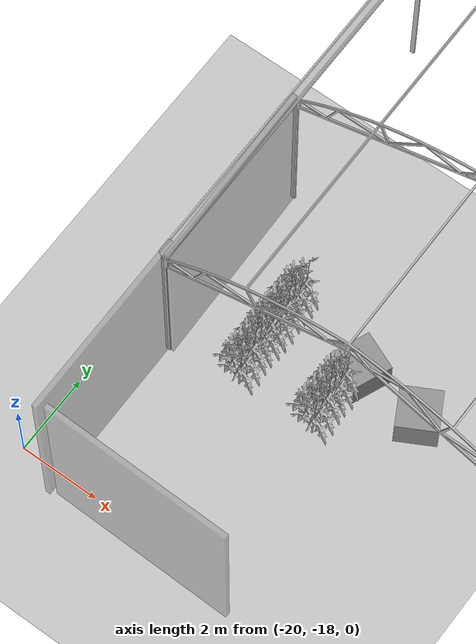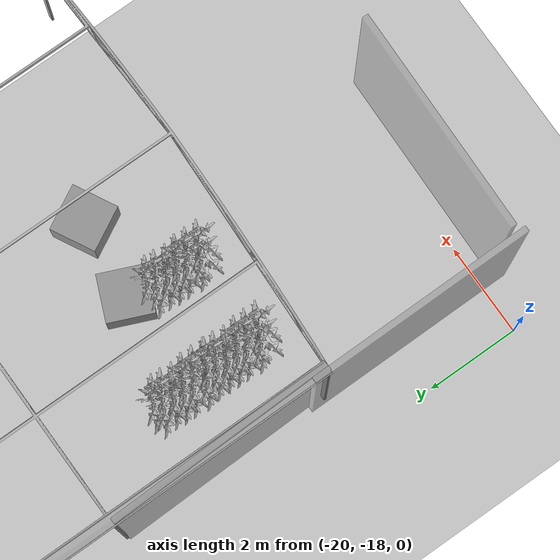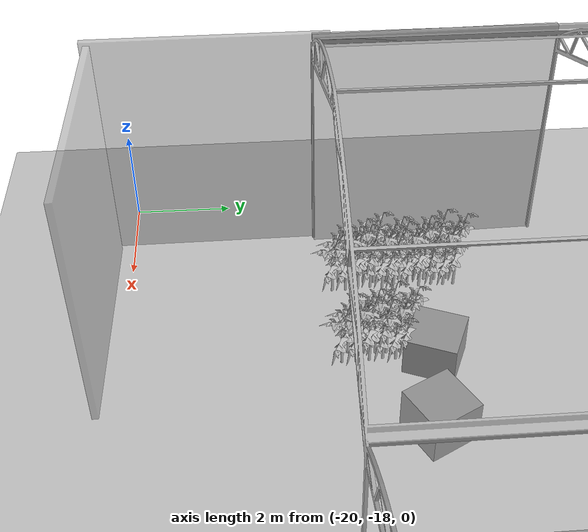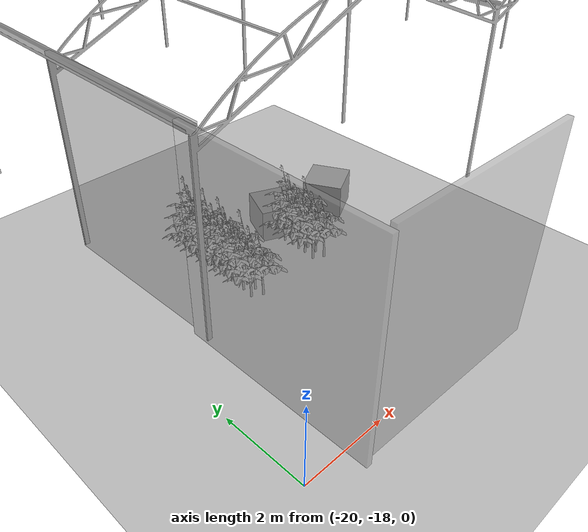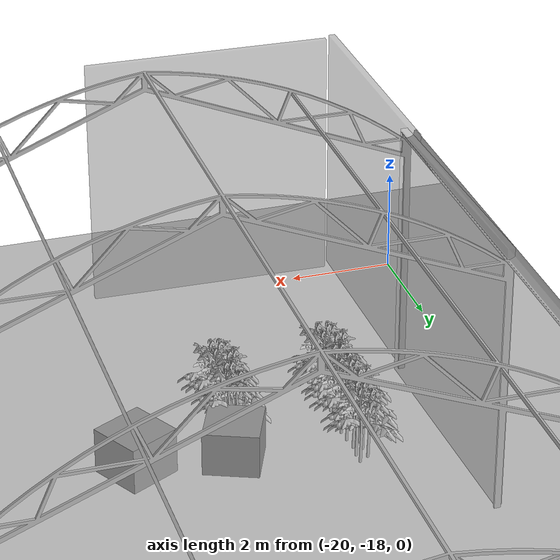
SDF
<sdf version="1.6">
 <world name="default">
  <model name="ground_plane">
   <static>1</static>
   <link name="link">
    <collision name="collision">
     <geometry><plane><normal>0 0 1</normal><size>100 100</size></plane></geometry>
     <surface>
      <contact><collide_bitmask>65535</collide_bitmask></contact>
      <friction><ode><mu>100</mu><mu2>50</mu2></ode></friction>
     </surface>
    </collision>
    <visual name="visual">
     <cast_shadows>0</cast_shadows>
     <geometry><plane><normal>0 0 1</normal><size>100 100</size></plane></geometry>
     <material>
      <script><uri>file://media/materials/scripts/gazebo.material</uri><name>Gazebo/Grey</name></script>
     </material>
    </visual>
   </link>
  </model>
  <model name="greenhouse">
   <static>1</static>
   <link name="link">
    <collision name="collision">
     <geometry>
      <mesh><scale>0.05 0.05 0.05</scale><uri>model://greenhouse/meshes/greenhouse.dae</uri></mesh>
     </geometry>
    </collision>
    <visual name="visual">
     <geometry>
      <mesh><scale>0.03 0.03 0.03</scale><uri>model://greenhouse/meshes/greenhouse.dae</uri></mesh>
     </geometry>
    </visual>
   </link>
   <pose>-24.6631 -23.579 0 0 -0 0</pose>
  </model>
  <model name="Front_Plant_1">
   <model name="tomato_plant_medium">
    <static>1</static>
    <link name="link">
     <collision name="collision">
      <pose>0 0 0 1.5708 -0 0</pose>
      <geometry><mesh><scale>0.5 0.5 0.5</scale><uri>model://stick/meshes/stick.dae</uri></mesh></geometry>
     </collision>
     <visual name="visual">
      <geometry>
       <mesh><scale>5e-06 5e-06 6e-06</scale><uri>model://tomato_plant_medium/meshes/tomato-plant.dae</uri></mesh>
      </geometry>
     </visual>
    </link>
    <pose>0.087453 -0.595994 0.012396 0 -0 0</pose>
   </model>
   <model name="tomato_plant_medium_0">
    <static>1</static>
    <link name="link">
     <collision name="collision">
      <pose>0 0 0 1.5708 -0 0</pose>
      <geometry><mesh><scale>0.5 0.5 0.5</scale><uri>model://stick/meshes/stick.dae</uri></mesh></geometry>
     </collision>
     <visual name="visual">
      <geometry>
       <mesh><scale>5e-06 5e-06 6e-06</scale><uri>model://tomato_plant_medium/meshes/tomato-plant.dae</uri></mesh>
      </geometry>
     </visual>
    </link>
    <pose>-0.086166 -0.251822 0.012396 0 -0 0</pose>
   </model>
   <model name="tomato_plant_medium_1">
    <static>1</static>
    <link name="link">
     <collision name="collision">
      <pose>0 0 0 1.5708 -0 0</pose>
      <geometry><mesh><scale>0.5 0.5 0.5</scale><uri>model://stick/meshes/stick.dae</uri></mesh></geometry>
     </collision>
     <visual name="visual">
      <geometry>
       <mesh><scale>5e-06 5e-06 6e-06</scale><uri>model://tomato_plant_medium/meshes/tomato-plant.dae</uri></mesh>
      </geometry>
     </visual>
    </link>
    <pose>0.080199 0.118127 0.012396 0 -0 0</pose>
   </model>
   <model name="tomato_plant_small">
    <static>1</static>
    <link name="link">
     <collision name="collision">
      <pose>0 0 0 1.5708 -0 0</pose>
      <geometry><mesh><scale>0.5 0.45 0.5</scale><uri>model://stick/meshes/stick.dae</uri></mesh></geometry>
     </collision>
     <visual name="visual">
      <geometry>
       <mesh><scale>5e-06 5e-06 5e-06</scale><uri>model://tomato_plant_small/meshes/tomato-plant.dae</uri></mesh>
      </geometry>
     </visual>
    </link>
    <pose>0.099683 -1.12011 0.012396 0 -0 0</pose>
   </model>
   <model name="tomato_plant_small_0">
    <static>1</static>
    <link name="link">
     <collision name="collision">
      <pose>0 0 0 1.5708 -0 0</pose>
      <geometry><mesh><scale>0.5 0.45 0.5</scale><uri>model://stick/meshes/stick.dae</uri></mesh></geometry>
     </collision>
     <visual name="visual">
      <geometry>
       <mesh><scale>5e-06 5e-06 5e-06</scale><uri>model://tomato_plant_small/meshes/tomato-plant.dae</uri></mesh>
      </geometry>
     </visual>
    </link>
    <pose>-0.138771 -0.983982 0.012396 0 -0 0</pose>
   </model>
   <model name="tomato_plant_small_1">
    <static>1</static>
    <link name="link">
     <collision name="collision">
      <pose>0 0 0 1.5708 -0 0</pose>
      <geometry><mesh><scale>0.5 0.45 0.5</scale><uri>model://stick/meshes/stick.dae</uri></mesh></geometry>
     </collision>
     <visual name="visual">
      <geometry>
       <mesh><scale>5e-06 5e-06 5e-06</scale><uri>model://tomato_plant_small/meshes/tomato-plant.dae</uri></mesh>
      </geometry>
     </visual>
    </link>
    <pose>0.101334 -0.848814 0.012396 0 -0 0</pose>
   </model>
   <model name="tomato_plant_small_2">
    <static>1</static>
    <link name="link">
     <collision name="collision">
      <pose>0 0 0 1.5708 -0 0</pose>
      <geometry><mesh><scale>0.5 0.45 0.5</scale><uri>model://stick/meshes/stick.dae</uri></mesh></geometry>
     </collision>
     <visual name="visual">
      <geometry>
       <mesh><scale>5e-06 5e-06 5e-06</scale><uri>model://tomato_plant_small/meshes/tomato-plant.dae</uri></mesh>
      </geometry>
     </visual>
    </link>
    <pose>-0.103369 -0.683189 0.012396 0 -0 0</pose>
   </model>
   <model name="tomato_plant_small_3">
    <static>1</static>
    <link name="link">
     <collision name="collision">
      <pose>0 0 0 1.5708 -0 0</pose>
      <geometry><mesh><scale>0.5 0.45 0.5</scale><uri>model://stick/meshes/stick.dae</uri></mesh></geometry>
     </collision>
     <visual name="visual">
      <geometry>
       <mesh><scale>5e-06 5e-06 5e-06</scale><uri>model://tomato_plant_small/meshes/tomato-plant.dae</uri></mesh>
      </geometry>
     </visual>
    </link>
    <pose>-0.104381 -0.464811 0.012396 0 -0 0</pose>
   </model>
   <model name="tomato_plant_small_4">
    <static>1</static>
    <link name="link">
     <collision name="collision">
      <pose>0 0 0 1.5708 -0 0</pose>
      <geometry><mesh><scale>0.5 0.45 0.5</scale><uri>model://stick/meshes/stick.dae</uri></mesh></geometry>
     </collision>
     <visual name="visual">
      <geometry>
       <mesh><scale>5e-06 5e-06 5e-06</scale><uri>model://tomato_plant_small/meshes/tomato-plant.dae</uri></mesh>
      </geometry>
     </visual>
    </link>
    <pose>0.055604 -0.336879 0.012396 0 -0 0</pose>
   </model>
   <model name="tomato_plant_small_5">
    <static>1</static>
    <link name="link">
     <collision name="collision">
      <pose>0 0 0 1.5708 -0 0</pose>
      <geometry><mesh><scale>0.5 0.45 0.5</scale><uri>model://stick/meshes/stick.dae</uri></mesh></geometry>
     </collision>
     <visual name="visual">
      <geometry>
       <mesh><scale>5e-06 5e-06 5e-06</scale><uri>model://tomato_plant_small/meshes/tomato-plant.dae</uri></mesh>
      </geometry>
     </visual>
    </link>
    <pose>0.085059 -0.092572 0.012396 0 -0 0</pose>
   </model>
   <model name="tomato_plant_small_6">
    <static>1</static>
    <link name="link">
     <collision name="collision">
      <pose>0 0 0 1.5708 -0 0</pose>
      <geometry><mesh><scale>0.5 0.45 0.5</scale><uri>model://stick/meshes/stick.dae</uri></mesh></geometry>
     </collision>
     <visual name="visual">
      <geometry>
       <mesh><scale>5e-06 5e-06 5e-06</scale><uri>model://tomato_plant_small/meshes/tomato-plant.dae</uri></mesh>
      </geometry>
     </visual>
    </link>
    <pose>-0.096345 0.008888 0.012396 0 -0 0</pose>
   </model>
   <static>0</static>
   <pose>-17.2096 -12.8039 0 0 -0 0</pose>
  </model>
  <model name="Front_Plant_1_1">
   <model name="tomato_plant_medium">
    <static>1</static>
    <link name="link">
     <collision name="collision">
      <pose>0 0 0 1.5708 -0 0</pose>
      <geometry><mesh><scale>0.5 0.5 0.5</scale><uri>model://stick/meshes/stick.dae</uri></mesh></geometry>
     </collision>
     <visual name="visual">
      <geometry>
       <mesh><scale>5e-06 5e-06 6e-06</scale><uri>model://tomato_plant_medium/meshes/tomato-plant.dae</uri></mesh>
      </geometry>
     </visual>
    </link>
    <pose>0.087453 -0.595994 0.012396 0 -0 0</pose>
   </model>
   <model name="tomato_plant_medium_0">
    <static>1</static>
    <link name="link">
     <collision name="collision">
      <pose>0 0 0 1.5708 -0 0</pose>
      <geometry><mesh><scale>0.5 0.5 0.5</scale><uri>model://stick/meshes/stick.dae</uri></mesh></geometry>
     </collision>
     <visual name="visual">
      <geometry>
       <mesh><scale>5e-06 5e-06 6e-06</scale><uri>model://tomato_plant_medium/meshes/tomato-plant.dae</uri></mesh>
      </geometry>
     </visual>
    </link>
    <pose>-0.086166 -0.251822 0.012396 0 -0 0</pose>
   </model>
   <model name="tomato_plant_medium_1">
    <static>1</static>
    <link name="link">
     <collision name="collision">
      <pose>0 0 0 1.5708 -0 0</pose>
      <geometry><mesh><scale>0.5 0.5 0.5</scale><uri>model://stick/meshes/stick.dae</uri></mesh></geometry>
     </collision>
     <visual name="visual">
      <geometry>
       <mesh><scale>5e-06 5e-06 6e-06</scale><uri>model://tomato_plant_medium/meshes/tomato-plant.dae</uri></mesh>
      </geometry>
     </visual>
    </link>
    <pose>0.080199 0.118127 0.012396 0 -0 0</pose>
   </model>
   <model name="tomato_plant_small">
    <static>1</static>
    <link name="link">
     <collision name="collision">
      <pose>0 0 0 1.5708 -0 0</pose>
      <geometry><mesh><scale>0.5 0.45 0.5</scale><uri>model://stick/meshes/stick.dae</uri></mesh></geometry>
     </collision>
     <visual name="visual">
      <geometry>
       <mesh><scale>5e-06 5e-06 5e-06</scale><uri>model://tomato_plant_small/meshes/tomato-plant.dae</uri></mesh>
      </geometry>
     </visual>
    </link>
    <pose>0.099683 -1.12011 0.012396 0 -0 0</pose>
   </model>
   <model name="tomato_plant_small_0">
    <static>1</static>
    <link name="link">
     <collision name="collision">
      <pose>0 0 0 1.5708 -0 0</pose>
      <geometry><mesh><scale>0.5 0.45 0.5</scale><uri>model://stick/meshes/stick.dae</uri></mesh></geometry>
     </collision>
     <visual name="visual">
      <geometry>
       <mesh><scale>5e-06 5e-06 5e-06</scale><uri>model://tomato_plant_small/meshes/tomato-plant.dae</uri></mesh>
      </geometry>
     </visual>
    </link>
    <pose>-0.138771 -0.983982 0.012396 0 -0 0</pose>
   </model>
   <model name="tomato_plant_small_1">
    <static>1</static>
    <link name="link">
     <collision name="collision">
      <pose>0 0 0 1.5708 -0 0</pose>
      <geometry><mesh><scale>0.5 0.45 0.5</scale><uri>model://stick/meshes/stick.dae</uri></mesh></geometry>
     </collision>
     <visual name="visual">
      <geometry>
       <mesh><scale>5e-06 5e-06 5e-06</scale><uri>model://tomato_plant_small/meshes/tomato-plant.dae</uri></mesh>
      </geometry>
     </visual>
    </link>
    <pose>0.101334 -0.848814 0.012396 0 -0 0</pose>
   </model>
   <model name="tomato_plant_small_2">
    <static>1</static>
    <link name="link">
     <collision name="collision">
      <pose>0 0 0 1.5708 -0 0</pose>
      <geometry><mesh><scale>0.5 0.45 0.5</scale><uri>model://stick/meshes/stick.dae</uri></mesh></geometry>
     </collision>
     <visual name="visual">
      <geometry>
       <mesh><scale>5e-06 5e-06 5e-06</scale><uri>model://tomato_plant_small/meshes/tomato-plant.dae</uri></mesh>
      </geometry>
     </visual>
    </link>
    <pose>-0.103369 -0.683189 0.012396 0 -0 0</pose>
   </model>
   <model name="tomato_plant_small_3">
    <static>1</static>
    <link name="link">
     <collision name="collision">
      <pose>0 0 0 1.5708 -0 0</pose>
      <geometry><mesh><scale>0.5 0.45 0.5</scale><uri>model://stick/meshes/stick.dae</uri></mesh></geometry>
     </collision>
     <visual name="visual">
      <geometry>
       <mesh><scale>5e-06 5e-06 5e-06</scale><uri>model://tomato_plant_small/meshes/tomato-plant.dae</uri></mesh>
      </geometry>
     </visual>
    </link>
    <pose>-0.104381 -0.464811 0.012396 0 -0 0</pose>
   </model>
   <model name="tomato_plant_small_4">
    <static>1</static>
    <link name="link">
     <collision name="collision">
      <pose>0 0 0 1.5708 -0 0</pose>
      <geometry><mesh><scale>0.5 0.45 0.5</scale><uri>model://stick/meshes/stick.dae</uri></mesh></geometry>
     </collision>
     <visual name="visual">
      <geometry>
       <mesh><scale>5e-06 5e-06 5e-06</scale><uri>model://tomato_plant_small/meshes/tomato-plant.dae</uri></mesh>
      </geometry>
     </visual>
    </link>
    <pose>0.055604 -0.336879 0.012396 0 -0 0</pose>
   </model>
   <model name="tomato_plant_small_5">
    <static>1</static>
    <link name="link">
     <collision name="collision">
      <pose>0 0 0 1.5708 -0 0</pose>
      <geometry><mesh><scale>0.5 0.45 0.5</scale><uri>model://stick/meshes/stick.dae</uri></mesh></geometry>
     </collision>
     <visual name="visual">
      <geometry>
       <mesh><scale>5e-06 5e-06 5e-06</scale><uri>model://tomato_plant_small/meshes/tomato-plant.dae</uri></mesh>
      </geometry>
     </visual>
    </link>
    <pose>0.085059 -0.092572 0.012396 0 -0 0</pose>
   </model>
   <model name="tomato_plant_small_6">
    <static>1</static>
    <link name="link">
     <collision name="collision">
      <pose>0 0 0 1.5708 -0 0</pose>
      <geometry><mesh><scale>0.5 0.45 0.5</scale><uri>model://stick/meshes/stick.dae</uri></mesh></geometry>
     </collision>
     <visual name="visual">
      <geometry>
       <mesh><scale>5e-06 5e-06 5e-06</scale><uri>model://tomato_plant_small/meshes/tomato-plant.dae</uri></mesh>
      </geometry>
     </visual>
    </link>
    <pose>-0.096345 0.008888 0.012396 0 -0 0</pose>
   </model>
   <static>0</static>
   <pose>-17.2096 -11.5451 0 0 -0 0</pose>
  </model>
  <model name="Front_Plant_1_12">
   <model name="tomato_plant_medium">
    <static>1</static>
    <link name="link">
     <collision name="collision">
      <pose>0 0 0 1.5708 -0 0</pose>
      <geometry><mesh><scale>0.5 0.5 0.5</scale><uri>model://stick/meshes/stick.dae</uri></mesh></geometry>
     </collision>
     <visual name="visual">
      <geometry>
       <mesh><scale>5e-06 5e-06 6e-06</scale><uri>model://tomato_plant_medium/meshes/tomato-plant.dae</uri></mesh>
      </geometry>
     </visual>
    </link>
    <pose>0.087453 -0.595994 0.012396 0 -0 0</pose>
   </model>
   <model name="tomato_plant_medium_0">
    <static>1</static>
    <link name="link">
     <collision name="collision">
      <pose>0 0 0 1.5708 -0 0</pose>
      <geometry><mesh><scale>0.5 0.5 0.5</scale><uri>model://stick/meshes/stick.dae</uri></mesh></geometry>
     </collision>
     <visual name="visual">
      <geometry>
       <mesh><scale>5e-06 5e-06 6e-06</scale><uri>model://tomato_plant_medium/meshes/tomato-plant.dae</uri></mesh>
      </geometry>
     </visual>
    </link>
    <pose>-0.086166 -0.251822 0.012396 0 -0 0</pose>
   </model>
   <model name="tomato_plant_medium_1">
    <static>1</static>
    <link name="link">
     <collision name="collision">
      <pose>0 0 0 1.5708 -0 0</pose>
      <geometry><mesh><scale>0.5 0.5 0.5</scale><uri>model://stick/meshes/stick.dae</uri></mesh></geometry>
     </collision>
     <visual name="visual">
      <geometry>
       <mesh><scale>5e-06 5e-06 6e-06</scale><uri>model://tomato_plant_medium/meshes/tomato-plant.dae</uri></mesh>
      </geometry>
     </visual>
    </link>
    <pose>0.080199 0.118127 0.012396 0 -0 0</pose>
   </model>
   <model name="tomato_plant_small">
    <static>1</static>
    <link name="link">
     <collision name="collision">
      <pose>0 0 0 1.5708 -0 0</pose>
      <geometry><mesh><scale>0.5 0.45 0.5</scale><uri>model://stick/meshes/stick.dae</uri></mesh></geometry>
     </collision>
     <visual name="visual">
      <geometry>
       <mesh><scale>5e-06 5e-06 5e-06</scale><uri>model://tomato_plant_small/meshes/tomato-plant.dae</uri></mesh>
      </geometry>
     </visual>
    </link>
    <pose>0.099683 -1.12011 0.012396 0 -0 0</pose>
   </model>
   <model name="tomato_plant_small_0">
    <static>1</static>
    <link name="link">
     <collision name="collision">
      <pose>0 0 0 1.5708 -0 0</pose>
      <geometry><mesh><scale>0.5 0.45 0.5</scale><uri>model://stick/meshes/stick.dae</uri></mesh></geometry>
     </collision>
     <visual name="visual">
      <geometry>
       <mesh><scale>5e-06 5e-06 5e-06</scale><uri>model://tomato_plant_small/meshes/tomato-plant.dae</uri></mesh>
      </geometry>
     </visual>
    </link>
    <pose>-0.138771 -0.983982 0.012396 0 -0 0</pose>
   </model>
   <model name="tomato_plant_small_1">
    <static>1</static>
    <link name="link">
     <collision name="collision">
      <pose>0 0 0 1.5708 -0 0</pose>
      <geometry><mesh><scale>0.5 0.45 0.5</scale><uri>model://stick/meshes/stick.dae</uri></mesh></geometry>
     </collision>
     <visual name="visual">
      <geometry>
       <mesh><scale>5e-06 5e-06 5e-06</scale><uri>model://tomato_plant_small/meshes/tomato-plant.dae</uri></mesh>
      </geometry>
     </visual>
    </link>
    <pose>0.101334 -0.848814 0.012396 0 -0 0</pose>
   </model>
   <model name="tomato_plant_small_2">
    <static>1</static>
    <link name="link">
     <collision name="collision">
      <pose>0 0 0 1.5708 -0 0</pose>
      <geometry><mesh><scale>0.5 0.45 0.5</scale><uri>model://stick/meshes/stick.dae</uri></mesh></geometry>
     </collision>
     <visual name="visual">
      <geometry>
       <mesh><scale>5e-06 5e-06 5e-06</scale><uri>model://tomato_plant_small/meshes/tomato-plant.dae</uri></mesh>
      </geometry>
     </visual>
    </link>
    <pose>-0.103369 -0.683189 0.012396 0 -0 0</pose>
   </model>
   <model name="tomato_plant_small_3">
    <static>1</static>
    <link name="link">
     <collision name="collision">
      <pose>0 0 0 1.5708 -0 0</pose>
      <geometry><mesh><scale>0.5 0.45 0.5</scale><uri>model://stick/meshes/stick.dae</uri></mesh></geometry>
     </collision>
     <visual name="visual">
      <geometry>
       <mesh><scale>5e-06 5e-06 5e-06</scale><uri>model://tomato_plant_small/meshes/tomato-plant.dae</uri></mesh>
      </geometry>
     </visual>
    </link>
    <pose>-0.104381 -0.464811 0.012396 0 -0 0</pose>
   </model>
   <model name="tomato_plant_small_4">
    <static>1</static>
    <link name="link">
     <collision name="collision">
      <pose>0 0 0 1.5708 -0 0</pose>
      <geometry><mesh><scale>0.5 0.45 0.5</scale><uri>model://stick/meshes/stick.dae</uri></mesh></geometry>
     </collision>
     <visual name="visual">
      <geometry>
       <mesh><scale>5e-06 5e-06 5e-06</scale><uri>model://tomato_plant_small/meshes/tomato-plant.dae</uri></mesh>
      </geometry>
     </visual>
    </link>
    <pose>0.055604 -0.336879 0.012396 0 -0 0</pose>
   </model>
   <model name="tomato_plant_small_5">
    <static>1</static>
    <link name="link">
     <collision name="collision">
      <pose>0 0 0 1.5708 -0 0</pose>
      <geometry><mesh><scale>0.5 0.45 0.5</scale><uri>model://stick/meshes/stick.dae</uri></mesh></geometry>
     </collision>
     <visual name="visual">
      <geometry>
       <mesh><scale>5e-06 5e-06 5e-06</scale><uri>model://tomato_plant_small/meshes/tomato-plant.dae</uri></mesh>
      </geometry>
     </visual>
    </link>
    <pose>0.085059 -0.092572 0.012396 0 -0 0</pose>
   </model>
   <model name="tomato_plant_small_6">
    <static>1</static>
    <link name="link">
     <collision name="collision">
      <pose>0 0 0 1.5708 -0 0</pose>
      <geometry><mesh><scale>0.5 0.45 0.5</scale><uri>model://stick/meshes/stick.dae</uri></mesh></geometry>
     </collision>
     <visual name="visual">
      <geometry>
       <mesh><scale>5e-06 5e-06 5e-06</scale><uri>model://tomato_plant_small/meshes/tomato-plant.dae</uri></mesh>
      </geometry>
     </visual>
    </link>
    <pose>-0.096345 0.008888 0.012396 0 -0 0</pose>
   </model>
   <static>0</static>
   <pose>-15.21 -12.7887 0 0 -0 0</pose>
  </model>
  <model name="wall_0_clone_4">
   <link name="link">
    <inertial>
     <mass>2.87883</mass>
     <inertia><ixx>11.0771</ixx><ixy>0</ixy><ixz>0</ixz><iyy>5.80298</iyy><iyz>0</iyz><izz>5.28163</izz></inertia>
    </inertial>
    <pose>0 -0.040293 1.94803 0 -0 0</pose>
    <visual name="visual">
     <geometry><box><size>0.12484 4.69043 4.91663</size></box></geometry>
     <material>
      <script><name>Gazebo/Grey</name><uri>file://media/materials/scripts/gazebo.material</uri></script>
      <ambient>0.3 0.3 0.3 1</ambient>
      <diffuse>0.7 0.7 0.7 1</diffuse>
      <specular>0.01 0.01 0.01 1</specular>
      <emissive>0 0 0 1</emissive>
      <shader type="vertex"><normal_map>__default__</normal_map></shader>
     </material>
     <transparency>0.5</transparency>
    </visual>
    <collision name="collision">
     <geometry><box><size>0.12484 4.69043 4.91663</size></box></geometry>
     <surface>
      <friction>
       <ode><mu>1</mu><mu2>1</mu2><fdir1>0 0 0</fdir1><slip1>0</slip1><slip2>0</slip2></ode>
       <torsional>
        <coefficient>1</coefficient>
        <patch_radius>0</patch_radius>
        <surface_radius>0</surface_radius>
        <use_patch_radius>1</use_patch_radius>
        <ode><slip>0</slip></ode>
       </torsional>
      </friction>
      <bounce><restitution_coefficient>0</restitution_coefficient><threshold>1e+06</threshold></bounce>
      <contact>
       <collide_without_contact>0</collide_without_contact>
       <collide_without_contact_bitmask>1</collide_without_contact_bitmask>
       <collide_bitmask>1</collide_bitmask>
       <ode>
        <soft_cfm>0</soft_cfm>
        <soft_erp>0.2</soft_erp>
        <kp>1e+13</kp>
        <kd>1</kd>
        <max_vel>0.01</max_vel>
        <min_depth>0</min_depth>
       </ode>
       <bullet>
        <split_impulse>1</split_impulse>
        <split_impulse_penetration_threshold>-0.01</split_impulse_penetration_threshold>
        <soft_cfm>0</soft_cfm>
        <soft_erp>0.2</soft_erp>
        <kp>1e+13</kp>
        <kd>1</kd>
       </bullet>
      </contact>
     </surface>
    </collision>
   </link>
   <static>0</static>
   <pose>-18.9393 -16.122 0.520285 0 1e-06 0.005113</pose>
  </model>
  <model name="wall_0">
   <link name="link">
    <inertial>
     <mass>2.87883</mass>
     <inertia><ixx>11.0771</ixx><ixy>0</ixy><ixz>0</ixz><iyy>5.80298</iyy><iyz>0</iyz><izz>5.28163</izz></inertia>
    </inertial>
    <pose>0 -0.040293 1.94803 0 -0 0</pose>
    <visual name="visual">
     <geometry><box><size>0.12484 4.69043 4.91663</size></box></geometry>
     <material>
      <script><name>Gazebo/Grey</name><uri>file://media/materials/scripts/gazebo.material</uri></script>
      <ambient>0.3 0.3 0.3 1</ambient>
      <diffuse>0.7 0.7 0.7 1</diffuse>
      <specular>0.01 0.01 0.01 1</specular>
      <emissive>0 0 0 1</emissive>
      <shader type="vertex"><normal_map>__default__</normal_map></shader>
     </material>
     <transparency>0.5</transparency>
    </visual>
    <collision name="collision">
     <geometry><box><size>0.12484 4.69043 4.91663</size></box></geometry>
     <surface>
      <friction>
       <ode><mu>1</mu><mu2>1</mu2><fdir1>0 0 0</fdir1><slip1>0</slip1><slip2>0</slip2></ode>
       <torsional>
        <coefficient>1</coefficient>
        <patch_radius>0</patch_radius>
        <surface_radius>0</surface_radius>
        <use_patch_radius>1</use_patch_radius>
        <ode><slip>0</slip></ode>
       </torsional>
      </friction>
      <bounce><restitution_coefficient>0</restitution_coefficient><threshold>1e+06</threshold></bounce>
      <contact>
       <collide_without_contact>0</collide_without_contact>
       <collide_without_contact_bitmask>1</collide_without_contact_bitmask>
       <collide_bitmask>1</collide_bitmask>
       <ode>
        <soft_cfm>0</soft_cfm>
        <soft_erp>0.2</soft_erp>
        <kp>1e+13</kp>
        <kd>1</kd>
        <max_vel>0.01</max_vel>
        <min_depth>0</min_depth>
       </ode>
       <bullet>
        <split_impulse>1</split_impulse>
        <split_impulse_penetration_threshold>-0.01</split_impulse_penetration_threshold>
        <soft_cfm>0</soft_cfm>
        <soft_erp>0.2</soft_erp>
        <kp>1e+13</kp>
        <kd>1</kd>
       </bullet>
      </contact>
     </surface>
    </collision>
   </link>
   <static>1</static>
   <pose>-18.8735 -11.7786 0.52028 0 1e-06 0.02324</pose>
  </model>
  <model name="unit_box_clone_0">
   <pose>-15.0713 -12.1354 0.307953 6e-06 1.5e-05 1.17149</pose>
   <link name="link">
    <inertial>
     <mass>1</mass>
     <inertia>
      <ixx>0.166667</ixx>
      <ixy>0</ixy>
      <ixz>0</ixz>
      <iyy>0.166667</iyy>
      <iyz>0</iyz>
      <izz>0.166667</izz>
     </inertia>
    </inertial>
    <collision name="collision"><geometry><box><size>1 1 1</size></box></geometry></collision>
    <visual name="visual">
     <geometry><box><size>1 1 1</size></box></geometry>
     <material>
      <script><name>Gazebo/Grey</name><uri>file://media/materials/scripts/gazebo.material</uri></script>
     </material>
    </visual>
   </link>
  </model>
  <model name="unit_box_0">
   <pose>-13.369 -12.3201 0.346875 -5e-06 -9e-06 0.493706</pose>
   <link name="link">
    <inertial>
     <mass>1</mass>
     <inertia>
      <ixx>0.166667</ixx>
      <ixy>0</ixy>
      <ixz>0</ixz>
      <iyy>0.166667</iyy>
      <iyz>0</iyz>
      <izz>0.166667</izz>
     </inertia>
    </inertial>
    <collision name="collision"><geometry><box><size>1 0.999999 1</size></box></geometry></collision>
    <visual name="visual">
     <geometry><box><size>1 0.999999 1</size></box></geometry>
     <material>
      <script><name>Gazebo/Grey</name><uri>file://media/materials/scripts/gazebo.material</uri></script>
     </material>
    </visual>
   </link>
  </model>
  <model name="wall_0_clone_0_clone_clone_0">
   <link name="link">
    <inertial>
     <mass>2.87883</mass>
     <inertia><ixx>11.0771</ixx><ixy>0</ixy><ixz>0</ixz><iyy>5.80298</iyy><iyz>0</iyz><izz>5.28163</izz></inertia>
    </inertial>
    <pose>0 -0.040293 1.94803 0 -0 0</pose>
    <visual name="visual">
     <geometry><box><size>0.12484 4.69043 4.91663</size></box></geometry>
     <material>
      <script><name>Gazebo/Grey</name><uri>file://media/materials/scripts/gazebo.material</uri></script>
      <ambient>0.3 0.3 0.3 1</ambient>
      <diffuse>0.7 0.7 0.7 1</diffuse>
      <specular>0.01 0.01 0.01 1</specular>
      <emissive>0 0 0 1</emissive>
      <shader type="vertex"><normal_map>__default__</normal_map></shader>
     </material>
     <transparency>0.5</transparency>
    </visual>
    <collision name="collision">
     <geometry><box><size>0.12484 4.69043 4.91663</size></box></geometry>
     <surface>
      <friction>
       <ode><mu>1</mu><mu2>1</mu2><fdir1>0 0 0</fdir1><slip1>0</slip1><slip2>0</slip2></ode>
       <torsional>
        <coefficient>1</coefficient>
        <patch_radius>0</patch_radius>
        <surface_radius>0</surface_radius>
        <use_patch_radius>1</use_patch_radius>
        <ode><slip>0</slip></ode>
       </torsional>
      </friction>
      <bounce><restitution_coefficient>0</restitution_coefficient><threshold>1e+06</threshold></bounce>
      <contact>
       <collide_without_contact>0</collide_without_contact>
       <collide_without_contact_bitmask>1</collide_without_contact_bitmask>
       <collide_bitmask>1</collide_bitmask>
       <ode>
        <soft_cfm>0</soft_cfm>
        <soft_erp>0.2</soft_erp>
        <kp>1e+13</kp>
        <kd>1</kd>
        <max_vel>0.01</max_vel>
        <min_depth>0</min_depth>
       </ode>
       <bullet>
        <split_impulse>1</split_impulse>
        <split_impulse_penetration_threshold>-0.01</split_impulse_penetration_threshold>
        <soft_cfm>0</soft_cfm>
        <soft_erp>0.2</soft_erp>
        <kp>1e+13</kp>
        <kd>1</kd>
       </bullet>
      </contact>
     </surface>
    </collision>
   </link>
   <static>0</static>
   <pose>-16.3711 -18.3846 0.520284 0 1e-06 -1.58845</pose>
  </model>
 </world>
</sdf>
